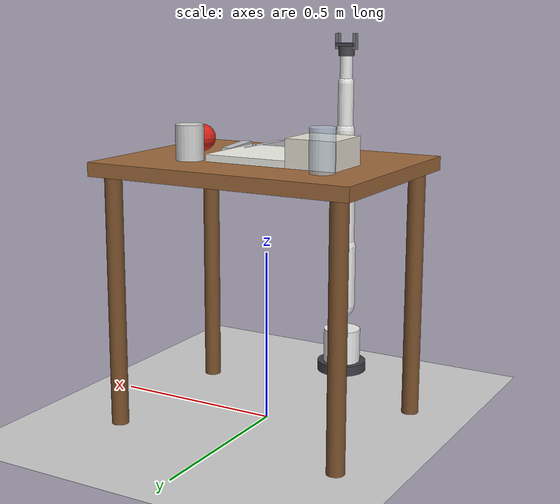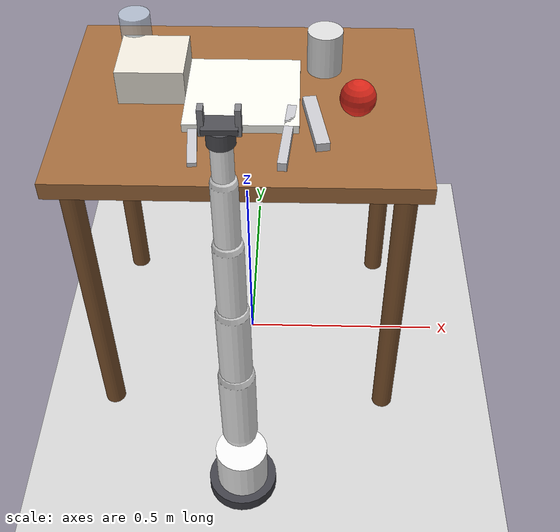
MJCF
<mujoco model="tabletop_scene">
    <compiler angle="degree" meshdir="/tmp/tmp8nenjlqb"/>

    <option timestep="0.002" gravity="0 0 -9.81" integrator="implicitfast"/>

    <visual>
        <global offwidth="1600" offheight="1200"/>
        <headlight diffuse="0.7 0.7 0.7" ambient="0.4 0.4 0.4" specular="0.3 0.3 0.3"/>
    </visual>

    <asset>

        <texture name="wood" type="2d" builtin="checker" rgb1="0.60 0.40 0.22" rgb2="0.65 0.43 0.25" width="128" height="128"/>
        <texture name="floor" type="2d" builtin="checker" rgb1="0.85 0.85 0.85" rgb2="0.78 0.78 0.78" width="256" height="256"/>
        <material name="wood_mat" texture="wood" shininess="0.4" specular="0.2"/>
        <material name="floor_mat" texture="floor"/>
    </asset>

    <worldbody>
        <light pos="0 0 2.5" dir="0 0 -1" diffuse="0.95 0.92 0.88" castshadow="true"/>
        <light pos="0.4 -0.3 1.5" dir="-0.2 0.2 -1" diffuse="0.35 0.35 0.30"/>

        <!-- Floor -->
        <geom name="floor" type="plane" size="3 3 0.01" material="floor_mat"/>

        <!-- Table -->
        <body name="table" pos="0 0 0.750">
            <geom name="table_top" type="box" size="0.400 0.300 0.02" material="wood_mat"/>
        </body>
        <geom name="leg1" type="cylinder" size="0.025 0.375" pos="0.350 0.250 0.375" rgba="0.50 0.33 0.18 1"/>
        <geom name="leg2" type="cylinder" size="0.025 0.375" pos="-0.350 0.250 0.375" rgba="0.50 0.33 0.18 1"/>
        <geom name="leg3" type="cylinder" size="0.025 0.375" pos="0.350 -0.250 0.375" rgba="0.50 0.33 0.18 1"/>
        <geom name="leg4" type="cylinder" size="0.025 0.375" pos="-0.350 -0.250 0.375" rgba="0.50 0.33 0.18 1"/>

        <!-- Panda-like Robot Arm (simplified 6-DOF + gripper) -->
        <body name="robot_base" pos="0 -0.500 0">
            <geom name="base" type="cylinder" size="0.08 0.03" rgba="0.25 0.25 0.28 1" mass="8"/>

            <body name="link0" pos="0 0 0.06">
                <geom name="link0_vis" type="cylinder" size="0.06 0.08" rgba="0.95 0.95 0.95 1" mass="3"/>

                <body name="link1" pos="0 0 0.16">
                    <joint name="J1" type="hinge" axis="0 0 1" range="-170 170" damping="5"/>
                    <geom name="link1_geom" type="capsule" fromto="0 0 0 0 0 0.20" size="0.04" rgba="0.95 0.95 0.95 1" mass="2"/>

                    <body name="link2" pos="0 0 0.20">
                        <joint name="J2" type="hinge" axis="0 1 0" range="-100 100" damping="4"/>
                        <geom name="link2_geom" type="capsule" fromto="0 0 0 0 0 0.20" size="0.035" rgba="0.95 0.95 0.95 1" mass="1.5"/>

                        <body name="link3" pos="0 0 0.20">
                            <joint name="J3" type="hinge" axis="0 0 1" range="-170 170" damping="3"/>
                            <geom name="link3_geom" type="capsule" fromto="0 0 0 0 0 0.18" size="0.03" rgba="0.95 0.95 0.95 1" mass="1.2"/>

                            <body name="link4" pos="0 0 0.18">
                                <joint name="J4" type="hinge" axis="0 1 0" range="-170 170" damping="2"/>
                                <geom name="link4_geom" type="capsule" fromto="0 0 0 0 0 0.15" size="0.025" rgba="0.95 0.95 0.95 1" mass="0.8"/>

                                <body name="link5" pos="0 0 0.15">
                                    <joint name="J5" type="hinge" axis="0 0 1" range="-170 170" damping="1.5"/>
                                    <geom name="link5_geom" type="capsule" fromto="0 0 0 0 0 0.10" size="0.02" rgba="0.95 0.95 0.95 1" mass="0.5"/>

                                    <body name="wrist" pos="0 0 0.10">
                                        <joint name="J6" type="hinge" axis="0 1 0" range="-170 170" damping="1"/>
                                        <geom name="wrist_geom" type="cylinder" size="0.025 0.015" rgba="0.3 0.3 0.32 1" mass="0.3"/>

                                        <!-- Parallel Gripper -->
                                        <body name="gripper_base" pos="0 0 0.02">
                                            <geom name="grip_base" type="box" size="0.03 0.02 0.005" rgba="0.3 0.3 0.32 1" mass="0.1"/>

                                            <body name="finger_left" pos="-0.03 0 0.01">
                                                <joint name="grip_l" type="slide" axis="1 0 0" range="0 0.04" damping="1"/>
                                                <geom name="finger_l" type="box" size="0.005 0.01 0.025" rgba="0.5 0.5 0.52 1" mass="0.03"/>
                                            </body>

                                            <body name="finger_right" pos="0.03 0 0.01">
                                                <joint name="grip_r" type="slide" axis="-1 0 0" range="0 0.04" damping="1"/>
                                                <geom name="finger_r" type="box" size="0.005 0.01 0.025" rgba="0.5 0.5 0.52 1" mass="0.03"/>
                                            </body>
                                        </body>
                                    </body>
                                </body>
                            </body>
                        </body>
                    </body>
                </body>
            </body>
        </body>

        <!-- Objects on table -->

        <body name="obj_0_plate" pos="0.0000 0.0000 0.7800" quat="1.0000 0 0 0.0000">
            <freejoint name="fj_0"/>
            <geom name="geom_0" type="box" size="0.1250 0.1250 0.0100" rgba="0.96 0.96 0.93 1" mass="1.000"/>
        </body>

        <body name="obj_1_mug" pos="0.1800 0.1200 0.8200" quat="1.0000 0 0 0.0000">
            <freejoint name="fj_1"/>
            <geom name="geom_1" type="cylinder" size="0.0400 0.0500" rgba="0.85 0.85 0.85 1" mass="0.512"/>
        </body>

        <body name="obj_2_bowl" pos="-0.2000 0.0500 0.8100" quat="1.0000 0 0 0.0000">
            <freejoint name="fj_2"/>
            <geom name="geom_2" type="box" size="0.0750 0.0750 0.0400" rgba="0.92 0.90 0.85 1" mass="1.440"/>
        </body>

        <body name="obj_3_fork" pos="-0.1000 -0.1500 0.7750" quat="0.9990 0 0 0.0436">
            <freejoint name="fj_3"/>
            <geom name="geom_3" type="box" size="0.0100 0.0900 0.0050" rgba="0.78 0.78 0.80 1" mass="0.029"/>
        </body>

        <body name="obj_4_knife" pos="0.1000 -0.1500 0.7800" quat="0.9990 0 0 -0.0436">
            <freejoint name="fj_4"/>
            <geom name="geom_4" type="box" size="0.0100 0.1000 0.0100" rgba="0.78 0.78 0.80 1" mass="0.064"/>
        </body>

        <body name="obj_5_spoon" pos="0.1600 -0.1000 0.7800" quat="0.9962 0 0 0.0872">
            <freejoint name="fj_5"/>
            <geom name="geom_5" type="box" size="0.0150 0.0850 0.0100" rgba="0.78 0.78 0.80 1" mass="0.082"/>
        </body>

        <body name="obj_6_glass" pos="-0.2500 0.1500 0.8300" quat="1.0000 0 0 0.0000">
            <freejoint name="fj_6"/>
            <geom name="geom_6" type="cylinder" size="0.0350 0.0600" rgba="0.80 0.88 0.95 0.6" mass="0.470"/>
        </body>

        <body name="obj_7_apple" pos="0.2500 -0.0500 0.8100" quat="1.0000 0 0 0.0000">
            <freejoint name="fj_7"/>
            <geom name="geom_7" type="sphere" size="0.0400" rgba="0.85 0.15 0.10 1" mass="0.410"/>
        </body>
    </worldbody>

    <actuator>
        <motor joint="J1" ctrlrange="-87 87" gear="80"/>
        <motor joint="J2" ctrlrange="-87 87" gear="80"/>
        <motor joint="J3" ctrlrange="-87 87" gear="60"/>
        <motor joint="J4" ctrlrange="-87 87" gear="40"/>
        <motor joint="J5" ctrlrange="-12 12" gear="20"/>
        <motor joint="J6" ctrlrange="-12 12" gear="15"/>
        <motor joint="grip_l" ctrlrange="-1 1" gear="10"/>
        <motor joint="grip_r" ctrlrange="-1 1" gear="10"/>
    </actuator>
</mujoco>
